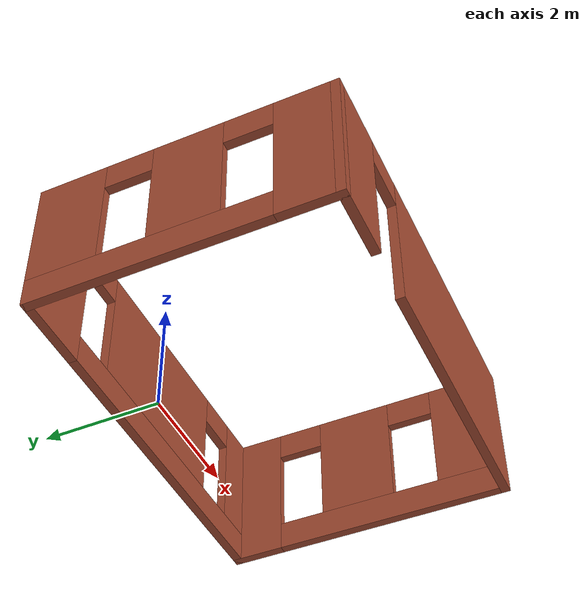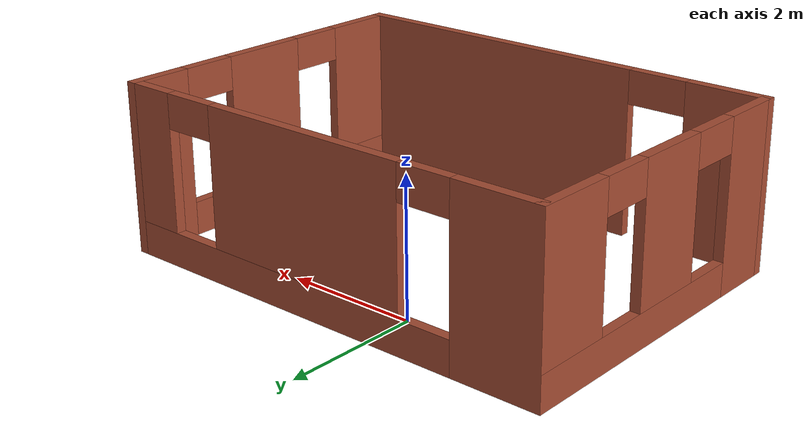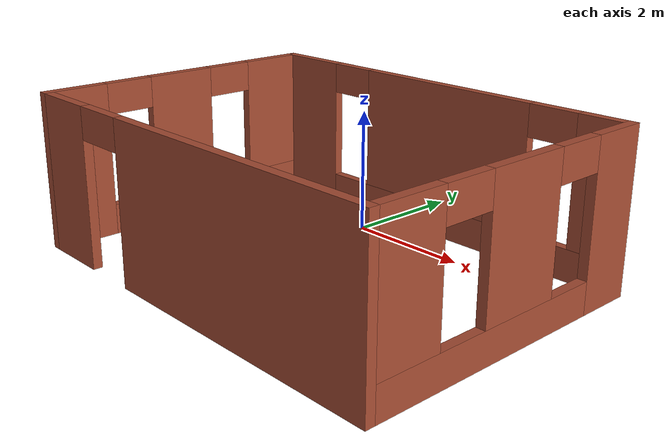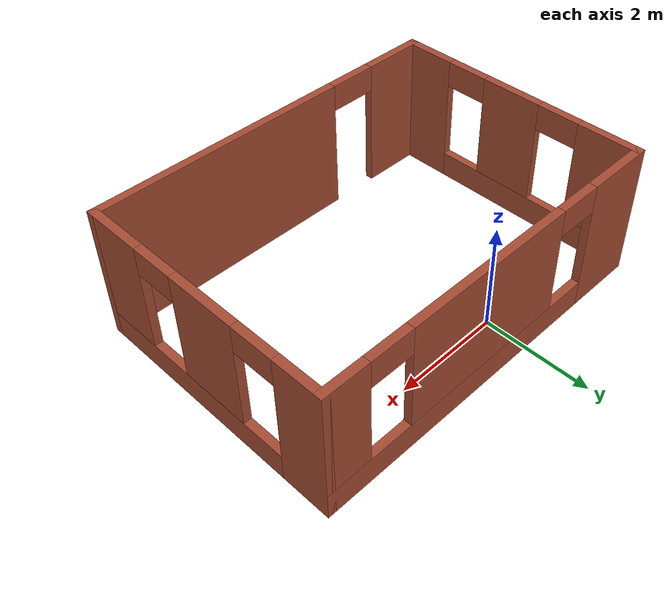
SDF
<?xml version='1.0'?>
<sdf version='1.7'>
  <model name='room'>
    <pose>0.835 -1.715 0 0 -0 0</pose>
    <link name='Wall_0'>
      <pose>-3.425 -0 0 0 -0 1.5708</pose>
      <visual name='Wall_0_Visual_0'>
        <pose>-1.97577 0 1.25 0 -0 0</pose>
        <geometry>
          <box>
            <size>1.04846 0.15 2.5</size>
          </box>
        </geometry>
        <material>
          <script>
            <uri>file://media/materials/scripts/gazebo.material</uri>
            <name>Gazebo/Bricks</name>
          </script>
          <ambient>1 1 1 1</ambient>
        </material>
        <meta>
          <layer>0</layer>
        </meta>
      </visual>
      <collision name='Wall_0_Collision_0'>
        <geometry>
          <box>
            <size>1.04846 0.15 2.5</size>
          </box>
        </geometry>
        <pose>-1.97577 0 1.25 0 -0 0</pose>
      </collision>
      <visual name='Wall_0_Visual_1'>
        <pose>0.524233 0 0.25 0 -0 0</pose>
        <geometry>
          <box>
            <size>3.95153 0.15 0.5</size>
          </box>
        </geometry>
        <material>
          <script>
            <uri>file://media/materials/scripts/gazebo.material</uri>
            <name>Gazebo/Bricks</name>
          </script>
          <ambient>1 1 1 1</ambient>
        </material>
        <meta>
          <layer>0</layer>
        </meta>
      </visual>
      <collision name='Wall_0_Collision_1'>
        <geometry>
          <box>
            <size>3.95153 0.15 0.5</size>
          </box>
        </geometry>
        <pose>0.524233 0 0.25 0 -0 0</pose>
      </collision>
      <visual name='Wall_0_Visual_2'>
        <pose>-0.066272 0 1.5 0 -0 0</pose>
        <geometry>
          <box>
            <size>1.17053 0.15 2</size>
          </box>
        </geometry>
        <material>
          <script>
            <uri>file://media/materials/scripts/gazebo.material</uri>
            <name>Gazebo/Bricks</name>
          </script>
          <ambient>1 1 1 1</ambient>
        </material>
        <meta>
          <layer>0</layer>
        </meta>
      </visual>
      <collision name='Wall_0_Collision_2'>
        <geometry>
          <box>
            <size>1.17053 0.15 2</size>
          </box>
        </geometry>
        <pose>-0.066272 0 1.5 0 -0 0</pose>
      </collision>
      <visual name='Wall_0_Visual_3'>
        <pose>1.90949 0 1.5 0 -0 0</pose>
        <geometry>
          <box>
            <size>1.18101 0.15 2</size>
          </box>
        </geometry>
        <material>
          <script>
            <uri>file://media/materials/scripts/gazebo.material</uri>
            <name>Gazebo/Bricks</name>
          </script>
          <ambient>1 1 1 1</ambient>
        </material>
        <meta>
          <layer>0</layer>
        </meta>
      </visual>
      <collision name='Wall_0_Collision_3'>
        <geometry>
          <box>
            <size>1.18101 0.15 2</size>
          </box>
        </geometry>
        <pose>1.90949 0 1.5 0 -0 0</pose>
      </collision>
      <visual name='Wall_0_Visual_4'>
        <pose>-1.05154 0 2.25 0 -0 0</pose>
        <geometry>
          <box>
            <size>0.8 0.15 0.5</size>
          </box>
        </geometry>
        <material>
          <script>
            <uri>file://media/materials/scripts/gazebo.material</uri>
            <name>Gazebo/Bricks</name>
          </script>
          <ambient>1 1 1 1</ambient>
        </material>
        <meta>
          <layer>0</layer>
        </meta>
      </visual>
      <collision name='Wall_0_Collision_4'>
        <geometry>
          <box>
            <size>0.8 0.15 0.5</size>
          </box>
        </geometry>
        <pose>-1.05154 0 2.25 0 -0 0</pose>
      </collision>
      <visual name='Wall_0_Visual_5'>
        <pose>0.91899 0 2.25 0 -0 0</pose>
        <geometry>
          <box>
            <size>0.8 0.15 0.5</size>
          </box>
        </geometry>
        <material>
          <script>
            <uri>file://media/materials/scripts/gazebo.material</uri>
            <name>Gazebo/Bricks</name>
          </script>
          <ambient>1 1 1 1</ambient>
        </material>
        <meta>
          <layer>0</layer>
        </meta>
      </visual>
      <collision name='Wall_0_Collision_5'>
        <geometry>
          <box>
            <size>0.8 0.15 0.5</size>
          </box>
        </geometry>
        <pose>0.91899 0 2.25 0 -0 0</pose>
      </collision>
    </link>
    <link name='Wall_1'>
      <pose>-0 2.425 0 0 -0 0</pose>
      <visual name='Wall_1_Visual_0'>
        <pose>-2.84161 0 1.25 0 -0 0</pose>
        <geometry>
          <box>
            <size>1.31678 0.15 2.5</size>
          </box>
        </geometry>
        <material>
          <script>
            <uri>file://media/materials/scripts/gazebo.material</uri>
            <name>Gazebo/Bricks</name>
          </script>
          <ambient>1 1 1 1</ambient>
        </material>
        <meta>
          <layer>0</layer>
        </meta>
      </visual>
      <collision name='Wall_1_Collision_0'>
        <geometry>
          <box>
            <size>1.31678 0.15 2.5</size>
          </box>
        </geometry>
        <pose>-2.84161 0 1.25 0 -0 0</pose>
      </collision>
      <visual name='Wall_1_Visual_1'>
        <pose>0.658389 0 0.25 0 -0 0</pose>
        <geometry>
          <box>
            <size>5.68322 0.15 0.5</size>
          </box>
        </geometry>
        <material>
          <script>
            <uri>file://media/materials/scripts/gazebo.material</uri>
            <name>Gazebo/Bricks</name>
          </script>
          <ambient>1 1 1 1</ambient>
        </material>
        <meta>
          <layer>0</layer>
        </meta>
      </visual>
      <collision name='Wall_1_Collision_1'>
        <geometry>
          <box>
            <size>5.68322 0.15 0.5</size>
          </box>
        </geometry>
        <pose>0.658389 0 0.25 0 -0 0</pose>
      </collision>
      <visual name='Wall_1_Visual_2'>
        <pose>0.240203 0 1.5 0 -0 0</pose>
        <geometry>
          <box>
            <size>3.24685 0.15 2</size>
          </box>
        </geometry>
        <material>
          <script>
            <uri>file://media/materials/scripts/gazebo.material</uri>
            <name>Gazebo/Bricks</name>
          </script>
          <ambient>1 1 1 1</ambient>
        </material>
        <meta>
          <layer>0</layer>
        </meta>
      </visual>
      <collision name='Wall_1_Collision_2'>
        <geometry>
          <box>
            <size>3.24685 0.15 2</size>
          </box>
        </geometry>
        <pose>0.240203 0 1.5 0 -0 0</pose>
      </collision>
      <visual name='Wall_1_Visual_3'>
        <pose>3.08181 0 1.5 0 -0 0</pose>
        <geometry>
          <box>
            <size>0.836372 0.15 2</size>
          </box>
        </geometry>
        <material>
          <script>
            <uri>file://media/materials/scripts/gazebo.material</uri>
            <name>Gazebo/Bricks</name>
          </script>
          <ambient>1 1 1 1</ambient>
        </material>
        <meta>
          <layer>0</layer>
        </meta>
      </visual>
      <collision name='Wall_1_Collision_3'>
        <geometry>
          <box>
            <size>0.836372 0.15 2</size>
          </box>
        </geometry>
        <pose>3.08181 0 1.5 0 -0 0</pose>
      </collision>
      <visual name='Wall_1_Visual_4'>
        <pose>-1.78322 0 2.25 0 -0 0</pose>
        <geometry>
          <box>
            <size>0.8 0.15 0.5</size>
          </box>
        </geometry>
        <material>
          <script>
            <uri>file://media/materials/scripts/gazebo.material</uri>
            <name>Gazebo/Bricks</name>
          </script>
          <ambient>1 1 1 1</ambient>
        </material>
        <meta>
          <layer>0</layer>
        </meta>
      </visual>
      <collision name='Wall_1_Collision_4'>
        <geometry>
          <box>
            <size>0.8 0.15 0.5</size>
          </box>
        </geometry>
        <pose>-1.78322 0 2.25 0 -0 0</pose>
      </collision>
      <visual name='Wall_1_Visual_5'>
        <pose>2.26363 0 2.25 0 -0 0</pose>
        <geometry>
          <box>
            <size>0.8 0.15 0.5</size>
          </box>
        </geometry>
        <material>
          <script>
            <uri>file://media/materials/scripts/gazebo.material</uri>
            <name>Gazebo/Bricks</name>
          </script>
          <ambient>1 1 1 1</ambient>
        </material>
        <meta>
          <layer>0</layer>
        </meta>
      </visual>
      <collision name='Wall_1_Collision_5'>
        <geometry>
          <box>
            <size>0.8 0.15 0.5</size>
          </box>
        </geometry>
        <pose>2.26363 0 2.25 0 -0 0</pose>
      </collision>
    </link>
    <link name='Wall_2'>
      <pose>3.425 -0 0 0 -0 -1.5708</pose>
      <visual name='Wall_2_Visual_0'>
        <pose>-2.0415 0 1.25 0 -0 0</pose>
        <geometry>
          <box>
            <size>0.917 0.15 2.5</size>
          </box>
        </geometry>
        <material>
          <script>
            <uri>file://media/materials/scripts/gazebo.material</uri>
            <name>Gazebo/Bricks</name>
          </script>
          <ambient>1 1 1 1</ambient>
        </material>
        <meta>
          <layer>0</layer>
        </meta>
      </visual>
      <collision name='Wall_2_Collision_0'>
        <geometry>
          <box>
            <size>0.917 0.15 2.5</size>
          </box>
        </geometry>
        <pose>-2.0415 0 1.25 0 -0 0</pose>
      </collision>
      <visual name='Wall_2_Visual_1'>
        <pose>0.4585 0 0.25 0 -0 0</pose>
        <geometry>
          <box>
            <size>4.083 0.15 0.5</size>
          </box>
        </geometry>
        <material>
          <script>
            <uri>file://media/materials/scripts/gazebo.material</uri>
            <name>Gazebo/Bricks</name>
          </script>
          <ambient>1 1 1 1</ambient>
        </material>
        <meta>
          <layer>0</layer>
        </meta>
      </visual>
      <collision name='Wall_2_Collision_1'>
        <geometry>
          <box>
            <size>4.083 0.15 0.5</size>
          </box>
        </geometry>
        <pose>0.4585 0 0.25 0 -0 0</pose>
      </collision>
      <visual name='Wall_2_Visual_2'>
        <pose>-0.125245 0 1.5 0 -0 0</pose>
        <geometry>
          <box>
            <size>1.31551 0.15 2</size>
          </box>
        </geometry>
        <material>
          <script>
            <uri>file://media/materials/scripts/gazebo.material</uri>
            <name>Gazebo/Bricks</name>
          </script>
          <ambient>1 1 1 1</ambient>
        </material>
        <meta>
          <layer>0</layer>
        </meta>
      </visual>
      <collision name='Wall_2_Collision_2'>
        <geometry>
          <box>
            <size>1.31551 0.15 2</size>
          </box>
        </geometry>
        <pose>-0.125245 0 1.5 0 -0 0</pose>
      </collision>
      <visual name='Wall_2_Visual_3'>
        <pose>1.91626 0 1.5 0 -0 0</pose>
        <geometry>
          <box>
            <size>1.16749 0.15 2</size>
          </box>
        </geometry>
        <material>
          <script>
            <uri>file://media/materials/scripts/gazebo.material</uri>
            <name>Gazebo/Bricks</name>
          </script>
          <ambient>1 1 1 1</ambient>
        </material>
        <meta>
          <layer>0</layer>
        </meta>
      </visual>
      <collision name='Wall_2_Collision_3'>
        <geometry>
          <box>
            <size>1.16749 0.15 2</size>
          </box>
        </geometry>
        <pose>1.91626 0 1.5 0 -0 0</pose>
      </collision>
      <visual name='Wall_2_Visual_4'>
        <pose>-1.183 0 2.25 0 -0 0</pose>
        <geometry>
          <box>
            <size>0.8 0.15 0.5</size>
          </box>
        </geometry>
        <material>
          <script>
            <uri>file://media/materials/scripts/gazebo.material</uri>
            <name>Gazebo/Bricks</name>
          </script>
          <ambient>1 1 1 1</ambient>
        </material>
        <meta>
          <layer>0</layer>
        </meta>
      </visual>
      <collision name='Wall_2_Collision_4'>
        <geometry>
          <box>
            <size>0.8 0.15 0.5</size>
          </box>
        </geometry>
        <pose>-1.183 0 2.25 0 -0 0</pose>
      </collision>
      <visual name='Wall_2_Visual_5'>
        <pose>0.93251 0 2.25 0 -0 0</pose>
        <geometry>
          <box>
            <size>0.8 0.15 0.5</size>
          </box>
        </geometry>
        <material>
          <script>
            <uri>file://media/materials/scripts/gazebo.material</uri>
            <name>Gazebo/Bricks</name>
          </script>
          <ambient>1 1 1 1</ambient>
        </material>
        <meta>
          <layer>0</layer>
        </meta>
      </visual>
      <collision name='Wall_2_Collision_5'>
        <geometry>
          <box>
            <size>0.8 0.15 0.5</size>
          </box>
        </geometry>
        <pose>0.93251 0 2.25 0 -0 0</pose>
      </collision>
    </link>
    <link name='Wall_3'>
      <pose>-0 -2.425 0 0 -0 3.14159</pose>
      <visual name='Wall_3_Visual_0'>
        <pose>-1.07016 0 1.25 0 -0 0</pose>
        <geometry>
          <box>
            <size>4.85967 0.15 2.5</size>
          </box>
        </geometry>
        <material>
          <script>
            <uri>file://media/materials/scripts/gazebo.material</uri>
            <name>Gazebo/Bricks</name>
          </script>
          <ambient>1 1 1 1</ambient>
        </material>
        <meta>
          <layer>0</layer>
        </meta>
      </visual>
      <collision name='Wall_3_Collision_0'>
        <geometry>
          <box>
            <size>4.85967 0.15 2.5</size>
          </box>
        </geometry>
        <pose>-1.07016 0 1.25 0 -0 0</pose>
      </collision>
      <visual name='Wall_3_Visual_1'>
        <pose>2.87984 0 1.25 0 -0 0</pose>
        <geometry>
          <box>
            <size>1.24033 0.15 2.5</size>
          </box>
        </geometry>
        <material>
          <script>
            <uri>file://media/materials/scripts/gazebo.material</uri>
            <name>Gazebo/Bricks</name>
          </script>
          <ambient>1 1 1 1</ambient>
        </material>
        <meta>
          <layer>0</layer>
        </meta>
      </visual>
      <collision name='Wall_3_Collision_1'>
        <geometry>
          <box>
            <size>1.24033 0.15 2.5</size>
          </box>
        </geometry>
        <pose>2.87984 0 1.25 0 -0 0</pose>
      </collision>
      <visual name='Wall_3_Visual_2'>
        <pose>1.80967 0 2.25 0 -0 0</pose>
        <geometry>
          <box>
            <size>0.9 0.15 0.5</size>
          </box>
        </geometry>
        <material>
          <script>
            <uri>file://media/materials/scripts/gazebo.material</uri>
            <name>Gazebo/Bricks</name>
          </script>
          <ambient>1 1 1 1</ambient>
        </material>
        <meta>
          <layer>0</layer>
        </meta>
      </visual>
      <collision name='Wall_3_Collision_2'>
        <geometry>
          <box>
            <size>0.9 0.15 0.5</size>
          </box>
        </geometry>
        <pose>1.80967 0 2.25 0 -0 0</pose>
      </collision>
    </link>

    <static>1</static>
  </model>
</sdf>
